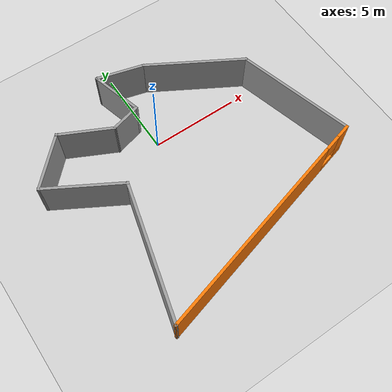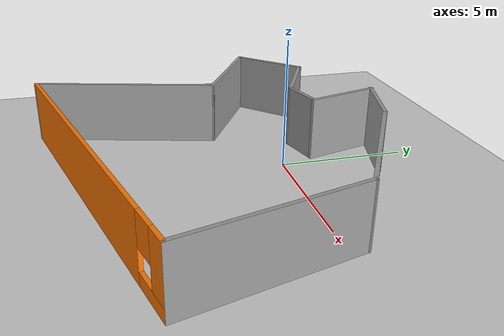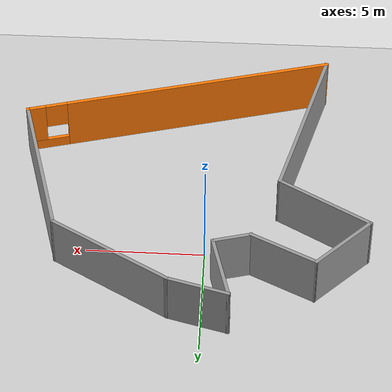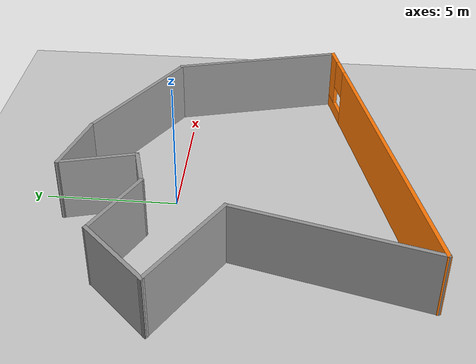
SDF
<sdf version="1.7">
 <world name="default">
  <plugin name="hello" filename="libhello.so"/>
  <light name="sun" type="directional">
   <pose>0 0 10 0 -0 0</pose>
   <diffuse>0.8 0.8 0.8 1</diffuse>
   <specular>0.2 0.2 0.2 1</specular>
   <attenuation>
    <range>1000</range>
    <constant>0.9</constant>
    <linear>0.01</linear>
    <quadratic>0.001</quadratic>
   </attenuation>
   <direction>-0.5 0.1 -0.9</direction>
   <spot><inner_angle>0</inner_angle><outer_angle>0</outer_angle><falloff>0</falloff></spot>
  </light>
  <model name="ground_plane">
   <static>1</static>
   <link name="link">
    <collision name="collision">
     <geometry><plane><normal>0 0 1</normal><size>100 100</size></plane></geometry>
     <surface>
      <contact><collide_bitmask>65535</collide_bitmask></contact>
      <friction><ode><mu>100</mu><mu2>50</mu2></ode></friction>
     </surface>
    </collision>
    <visual name="visual">
     <cast_shadows>0</cast_shadows>
     <geometry><plane><normal>0 0 1</normal><size>100 100</size></plane></geometry>
     <material>
      <script><uri>file://media/materials/scripts/gazebo.material</uri><name>Gazebo/Grey</name></script>
     </material>
    </visual>
   </link>
  </model>
  <gravity>0 0 -9.8</gravity>
  <magnetic_field>6e-06 2.3e-05 -4.2e-05</magnetic_field>
  <atmosphere type="adiabatic"/>
  <physics type="ode">
   <max_step_size>0.001</max_step_size>
   <real_time_factor>1</real_time_factor>
   <real_time_update_rate>1000</real_time_update_rate>
  </physics>
  <scene><ambient>0.4 0.4 0.4 1</ambient><background>0.7 0.7 0.7 1</background><shadows>1</shadows></scene>
  <spherical_coordinates>
   <surface_model>EARTH_WGS84</surface_model>
   <latitude_deg>0</latitude_deg>
   <longitude_deg>0</longitude_deg>
   <elevation>0</elevation>
   <heading_deg>0</heading_deg>
  </spherical_coordinates>
  <model name="Untitled">
   <pose>0.56233 -2.59093 0 0 -0 0</pose>
   <link name="Wall_0">
    <collision name="Wall_0_Collision">
     <geometry><box><size>3.25 0.15 2.5</size></box></geometry>
     <pose>0 0 1.25 0 -0 0</pose>
    </collision>
    <visual name="Wall_0_Visual">
     <pose>0 0 1.25 0 -0 0</pose>
     <geometry><box><size>3.25 0.15 2.5</size></box></geometry>
     <material>
      <script><uri>file://media/materials/scripts/gazebo.material</uri><name>Gazebo/Grey</name></script>
      <ambient>1 1 1 1</ambient>
     </material>
     <meta><layer>0</layer></meta>
    </visual>
    <pose>-6.27688 3.71893 0 0 -0 -2.35619</pose>
   </link>
   <link name="Wall_1">
    <collision name="Wall_1_Collision">
     <geometry><box><size>4.5 0.15 2.5</size></box></geometry>
     <pose>0 0 1.25 0 -0 0</pose>
    </collision>
    <visual name="Wall_1_Visual">
     <pose>0 0 1.25 0 -0 0</pose>
     <geometry><box><size>4.5 0.15 2.5</size></box></geometry>
     <material>
      <script><uri>file://media/materials/scripts/gazebo.material</uri><name>Gazebo/Grey</name></script>
      <ambient>1 1 1 1</ambient>
     </material>
     <meta><layer>0</layer></meta>
    </visual>
    <pose>-5.48929 1.53542 0 0 -0 -0.523599</pose>
   </link>
   <link name="Wall_2">
    <collision name="Wall_2_Collision">
     <geometry><box><size>7.5 0.15 2.5</size></box></geometry>
     <pose>0 0 1.25 0 -0 0</pose>
    </collision>
    <visual name="Wall_2_Visual">
     <pose>0 0 1.25 0 -0 0</pose>
     <geometry><box><size>7.5 0.15 2.5</size></box></geometry>
     <material>
      <script><uri>file://media/materials/scripts/gazebo.material</uri><name>Gazebo/Grey</name></script>
      <ambient>1 1 1 1</ambient>
     </material>
     <meta><layer>0</layer></meta>
    </visual>
    <pose>-4.55684 -3.10186 0 0 -0 -1.8326</pose>
   </link>
   <link name="Wall_3">
    <pose>0.939551 -4.92402 0 0 -0 0.261799</pose>
    <visual name="Wall_3_Visual_0">
     <pose>-0.895801 0 1.25 0 -0 0</pose>
     <geometry><box><size>11.7084 0.15 2.5</size></box></geometry>
     <material>
      <script><uri>file://media/materials/scripts/gazebo.material</uri><name>Gazebo/Grey</name></script>
      <ambient>0.996078 0.47451 0.0196078 1</ambient>
     </material>
     <meta><layer>0</layer></meta>
    </visual>
    <collision name="Wall_3_Collision_0">
     <geometry><box><size>11.7084 0.15 2.5</size></box></geometry>
     <pose>-0.895801 0 1.25 0 -0 0</pose>
    </collision>
    <visual name="Wall_3_Visual_1">
     <pose>5.8542 0 0.25 0 -0 0</pose>
     <geometry><box><size>1.7916 0.15 0.5</size></box></geometry>
     <material>
      <script><uri>file://media/materials/scripts/gazebo.material</uri><name>Gazebo/Grey</name></script>
      <ambient>0.996078 0.47451 0.0196078 1</ambient>
     </material>
     <meta><layer>0</layer></meta>
    </visual>
    <collision name="Wall_3_Collision_1">
     <geometry><box><size>1.7916 0.15 0.5</size></box></geometry>
     <pose>5.8542 0 0.25 0 -0 0</pose>
    </collision>
    <visual name="Wall_3_Visual_2">
     <pose>6.32604 0 1.5 0 -0 0</pose>
     <geometry><box><size>0.847917 0.15 2</size></box></geometry>
     <material>
      <script><uri>file://media/materials/scripts/gazebo.material</uri><name>Gazebo/Grey</name></script>
      <ambient>0.996078 0.47451 0.0196078 1</ambient>
     </material>
     <meta><layer>0</layer></meta>
    </visual>
    <collision name="Wall_3_Collision_2">
     <geometry><box><size>0.847917 0.15 2</size></box></geometry>
     <pose>6.32604 0 1.5 0 -0 0</pose>
    </collision>
    <visual name="Wall_3_Visual_3">
     <pose>5.43024 0 1.9 0 -0 0</pose>
     <geometry><box><size>0.943685 0.15 1.2</size></box></geometry>
     <material>
      <script><uri>file://media/materials/scripts/gazebo.material</uri><name>Gazebo/Grey</name></script>
      <ambient>0.996078 0.47451 0.0196078 1</ambient>
     </material>
     <meta><layer>0</layer></meta>
    </visual>
    <collision name="Wall_3_Collision_3">
     <geometry><box><size>0.943685 0.15 1.2</size></box></geometry>
     <pose>5.43024 0 1.9 0 -0 0</pose>
    </collision>
   </link>
   <link name="Wall_4">
    <collision name="Wall_4_Collision">
     <geometry><box><size>6.75 0.15 2.5</size></box></geometry>
     <pose>0 0 1.25 0 -0 0</pose>
    </collision>
    <visual name="Wall_4_Visual">
     <pose>0 0 1.25 0 -0 0</pose>
     <geometry><box><size>6.75 0.15 2.5</size></box></geometry>
     <material>
      <script><uri>file://media/materials/scripts/gazebo.material</uri><name>Gazebo/Grey</name></script>
      <ambient>1 1 1 1</ambient>
     </material>
     <meta><layer>0</layer></meta>
    </visual>
    <pose>6.533 -0.008848 0 0 -0 1.8326</pose>
   </link>
   <link name="Wall_5">
    <collision name="Wall_5_Collision">
     <geometry><box><size>5.75 0.15 2.5</size></box></geometry>
     <pose>0 0 1.25 0 -0 0</pose>
    </collision>
    <visual name="Wall_5_Visual">
     <pose>0 0 1.25 0 -0 0</pose>
     <geometry><box><size>5.75 0.15 2.5</size></box></geometry>
     <material>
      <script><uri>file://media/materials/scripts/gazebo.material</uri><name>Gazebo/Grey</name></script>
      <ambient>1 1 1 1</ambient>
     </material>
     <meta><layer>0</layer></meta>
    </visual>
    <pose>3.25403 4.57871 0 0 -0 2.61799</pose>
   </link>
   <link name="Wall_6">
    <collision name="Wall_6_Collision">
     <geometry><box><size>2.75 0.15 2.5</size></box></geometry>
     <pose>0 0 1.25 0 -0 0</pose>
    </collision>
    <visual name="Wall_6_Visual">
     <pose>0 0 1.25 0 -0 0</pose>
     <geometry><box><size>2.75 0.15 2.5</size></box></geometry>
     <material>
      <script><uri>file://media/materials/scripts/gazebo.material</uri><name>Gazebo/Grey</name></script>
      <ambient>1 1 1 1</ambient>
     </material>
     <meta><layer>0</layer></meta>
    </visual>
    <pose>-0.426546 6.31517 0 0 -0 2.87979</pose>
   </link>
   <link name="Wall_7">
    <collision name="Wall_7_Collision">
     <geometry><box><size>3 0.15 2.5</size></box></geometry>
     <pose>0 0 1.25 0 -0 0</pose>
    </collision>
    <visual name="Wall_7_Visual">
     <pose>0 0 1.25 0 -0 0</pose>
     <geometry><box><size>3 0.15 2.5</size></box></geometry>
     <material>
      <script><uri>file://media/materials/scripts/gazebo.material</uri><name>Gazebo/Grey</name></script>
      <ambient>1 1 1 1</ambient>
     </material>
     <meta><layer>0</layer></meta>
    </visual>
    <pose>-1.31343 5.27519 0 0 -0 -1.309</pose>
   </link>
   <link name="Wall_8">
    <collision name="Wall_8_Collision">
     <geometry><box><size>1.75 0.15 2.5</size></box></geometry>
     <pose>0 0 1.25 0 -0 0</pose>
    </collision>
    <visual name="Wall_8_Visual">
     <pose>0 0 1.25 0 -0 0</pose>
     <geometry><box><size>1.75 0.15 2.5</size></box></geometry>
     <material>
      <script><uri>file://media/materials/scripts/gazebo.material</uri><name>Gazebo/Grey</name></script>
      <ambient>1 1 1 1</ambient>
     </material>
     <meta><layer>0</layer></meta>
    </visual>
    <pose>-1.71736 3.69169 0 0 -0 -2.87979</pose>
   </link>
   <link name="Wall_9">
    <collision name="Wall_9_Collision">
     <geometry><box><size>3.15166 0.15 2.5</size></box></geometry>
     <pose>0 0 1.25 0 -0 0</pose>
    </collision>
    <visual name="Wall_9_Visual">
     <pose>0 0 1.25 0 -0 0</pose>
     <geometry><box><size>3.15166 0.15 2.5</size></box></geometry>
     <material>
      <script><uri>file://media/materials/scripts/gazebo.material</uri><name>Gazebo/Grey</name></script>
      <ambient>1 1 1 1</ambient>
     </material>
     <meta><layer>0</layer></meta>
    </visual>
    <pose>-3.83548 4.14979 0 0 -0 2.68244</pose>
   </link>
   <static>1</static>
  </model>
 </world>
</sdf>
